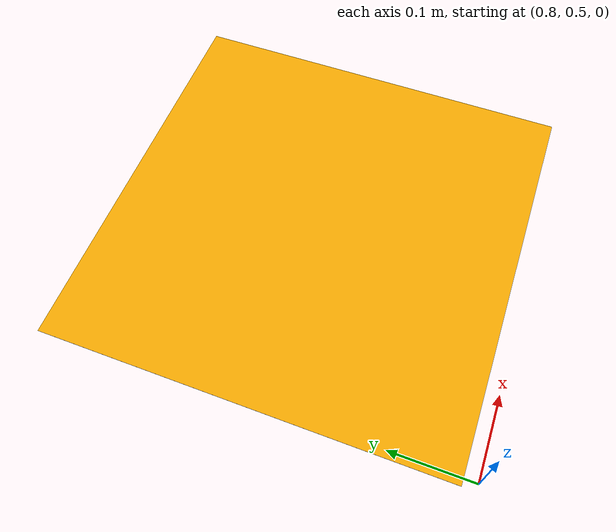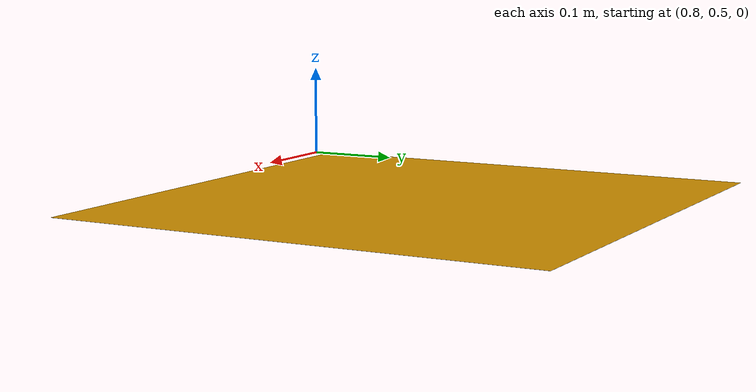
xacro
<?xml version="1.0"?>

<robot name="edufill_S1">

<xacro:macro name="edufill_S1" params="name">

	<link name="edufill_S1">

    		<inertial>
      			<origin xyz="1.042 0.766 0" />
      			<mass value="10.0" />
      			<inertia  ixx="1.0" ixy="0.0"  ixz="0.0"  iyy="1.0"  iyz="0.0"  izz="1.0" />
    		</inertial>
    		<visual>
      			<origin xyz="1.042 0.766 0"/>
      			<geometry>
        			<box size="0.5 0.5 0.0001" />
      			</geometry>
			<material name="surface">
				<texture filename="package://edufill_gazebo_world/common/worlds/S1.jpg"/>
			</material>
    		</visual>
    		<collision>
      			<origin xyz="1.042 0.766 0"/>
      		<geometry>
        		<box size="0.5 0.5 0.0001" />
      		</geometry>
    		</collision>
  	</link>

</xacro:macro>

<xacro:edufill_S1 name="edufill_S1" />
</robot>
